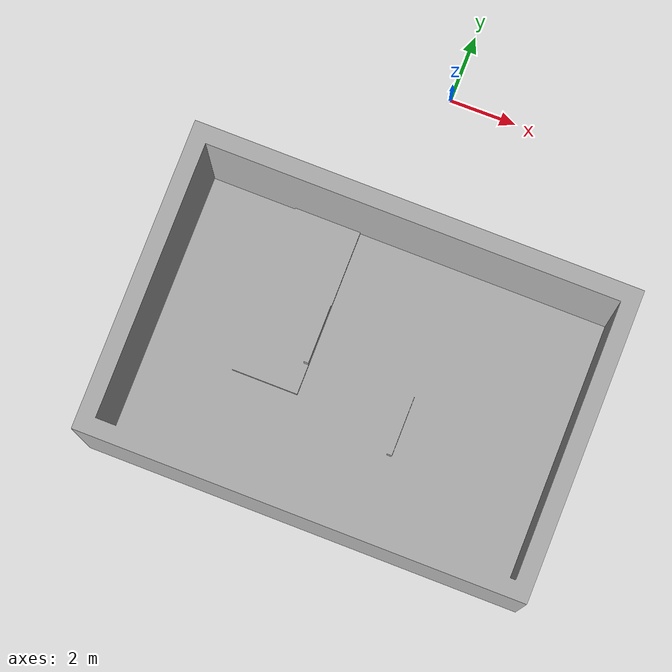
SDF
<?xml version='1.0' encoding='utf-8'?>
<sdf version='1.7'>
  <world name='default'>
    <!-- Physics -->
    <plugin filename="libignition-gazebo-physics-system.so" name="ignition::gazebo::systems::Physics">
    </plugin>

    <!-- Forwards simulation state to the GUI -->
    <plugin filename="libignition-gazebo-scene-broadcaster-system.so" name="ignition::gazebo::systems::SceneBroadcaster">
    </plugin>

    <!-- Processes user commands, like translate and create -->
    <plugin filename="libignition-gazebo-user-commands-system.so" name="ignition::gazebo::systems::UserCommands">
    </plugin>

    <!-- Generates rendering sensor data -->
    <plugin filename="libignition-gazebo-sensors-system.so" name="ignition::gazebo::systems::Sensors">
      <render_engine>ogre2</render_engine>
    </plugin>

    <plugin filename="libignition-gazebo-imu-system.so" name="ignition::gazebo::systems::Imu">
    </plugin>

    <light type='directional' name='direct_light'>
      <visualize>false</visualize>
      <cast_shadows>true</cast_shadows>
      <pose>14.6 7.9 10 0 0 0</pose>
      <diffuse>1.0 1.0 1.0 1</diffuse>
      <specular>0.5 0.5 0.5 1</specular>
      <attenuation>
        <range>1000</range>
        <constant>0.9</constant>
        <linear>0.01</linear>
        <quadratic>0.001</quadratic>
      </attenuation>
      <direction>0 0 -1</direction>
    </light>

    <model name='rmul_2026'>
      <include>
        <uri>model://rmul_2026</uri>
      </include>
      <pose>0.0 0.0 0 0 0 0</pose>
      <static>true</static>
    </model>
  </world>
</sdf>

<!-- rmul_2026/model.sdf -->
<sdf version='1.6'>
  <model name='rmul_2026'>
    <static>true</static>
    <link name='body'>
      <pose frame=''>-6 -4.25 0.2 0 0 0</pose>
      <self_collide>0</self_collide>
      <kinematic>0</kinematic>
      <gravity>1</gravity>
      <visual name='visual'>
        <material>
          <ambient>0.3 0.3 0.3 1</ambient>
          <diffuse>0.7 0.7 0.7 1</diffuse>
          <specular>0.01 0.01 0.01 1</specular>
        </material>
        <geometry>
          <mesh>
            <uri>model://rmul_2026/meshes/rmul_2026.stl</uri>
            <scale>1 1 1</scale>
          </mesh>
        </geometry>
      </visual>
      <collision name='collision'>
        <geometry>
          <mesh>
            <uri>model://rmul_2026/meshes/rmul_2026.stl</uri>
            <scale>1 1 1</scale>
          </mesh>
        </geometry>
      </collision>
    </link>
  </model>
</sdf>
